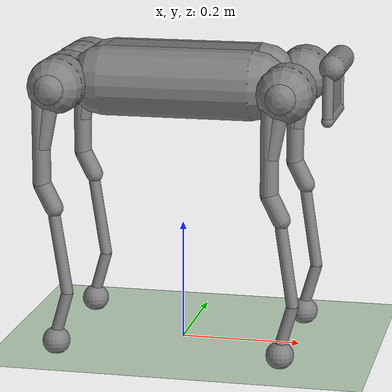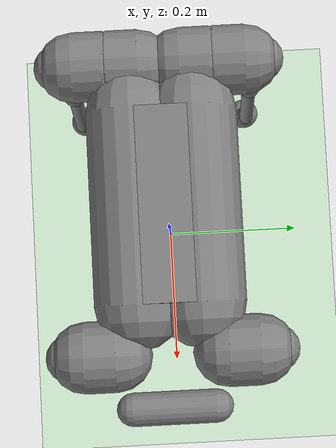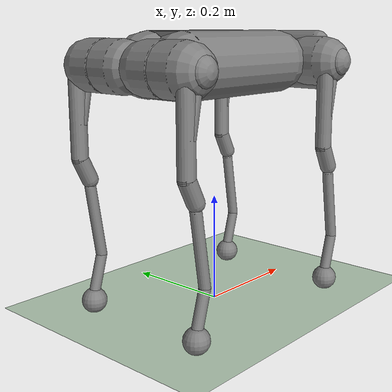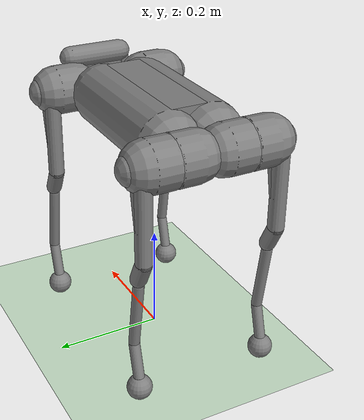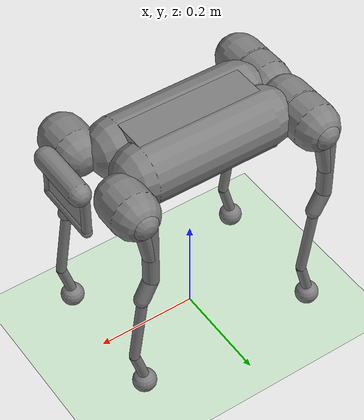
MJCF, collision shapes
<mujoco model="go1">
  <compiler angle="radian" meshdir="assets" autolimits="true"/>
  <compiler angle="radian" autolimits="true"/>

    <custom>
      <numeric data="10" name="constraint_ang_damping"/>
      <numeric data="0.5" name="joint_scale_pos"/>
      <numeric data="0.1" name="joint_scale_ang"/>
      <numeric data="0.9" name="spring_inertia_scale"/>
  </custom>

  <default>
    <default class="go1">
      <geom friction="0.6" margin="0.001" condim="3"/>
      <joint axis="0 1 0" damping="2" armature="0.01" />
      <position kp="100" forcerange="-23.7 23.7"/>
      <default class="abduction">
        <joint axis="1 0 0" damping="1" range="-0.863 0.863"/>
        <position ctrlrange="-0.863 0.863"/>
      </default>
      <default class="hip">
        <joint range="-0.686 4.501"/>
        <position ctrlrange="-0.686 4.501"/>
      </default>
      <default class="knee">
        <joint range="-2.818 -0.888"/>
        <position forcerange="-35.55 35.55" ctrlrange="-2.818 -0.888"/>
      </default>
      <default class="visual">
        <geom type="mesh" contype="0" conaffinity="0" group="2" material="dark"/>
      </default>
      <default class="collision">
        <geom group="3" type="capsule"/>
        <default class="hip_left1">
          <geom size="0.046 0.02" pos="0 0.045 0" quat="1 1 0 0" type="capsule"/>
        </default>
        <default class="hip_left2">
          <geom size="0.031 0.02" pos="0 0.065 0" quat="1 1 0 0" type="capsule"/>
        </default>
        <default class="hip_left3">
          <geom size="0.046 0.02" quat="1 1 0 0" type="capsule"/>
        </default>
        <default class="hip_right1">
          <geom size="0.046 0.02" pos="0 -0.045 0" quat="1 1 0 0" type="capsule"/>
        </default>
        <default class="hip_right2">
          <geom size="0.031 0.02" pos="0 -0.065 0" quat="1 1 0 0" type="capsule"/>
        </default>
        <default class="hip_right3">
          <geom size="0.046 0.02" quat="1 1 0 0" type="capsule"/>
        </default>
        <default class="thigh1">
          <geom size="0.015" fromto="-0.02 0 0 -0.02 0 -0.16"/>
        </default>
        <default class="thigh2">
          <geom size="0.015" fromto="0 0 0 -0.02 0 -0.1"/>
        </default>
        <default class="thigh3">
          <geom size="0.015" fromto="-0.02 0 -0.16 0 0 -0.2"/>
        </default>
        <default class="calf1">
          <geom size="0.01" fromto="0 0 0 0.02 0 -0.13"/>
        </default>
        <default class="calf2">
          <geom size="0.01" fromto="0.02 0 -0.13 0 0 -0.2"/>
        </default>
        <default class="foot">
          <geom type="sphere" size="0.023" pos="0 0 -0.213"  solimp="0.015 1 0.031" condim="3"
            friction="0.8 0.02 0.01"/>
        </default>
      </default>
    </default>
  </default>

  <asset>
    <material name="dark" rgba="0.1 0.1 0.1 1"/>
    <mesh class="go1" file="trunk.stl"/>
    <mesh class="go1" file="hip.stl"/>
    <mesh class="go1" file="thigh_mirror.stl"/>
    <mesh class="go1" file="calf.stl"/>
    <mesh class="go1" file="thigh.stl"/>
    <texture builtin="gradient" height="100" rgb1="1 1 1" rgb2="0 0 0" type="skybox" width="100"/>
    <texture builtin="flat" height="1278" mark="cross" markrgb="1 1 1" name="texgeom" random="0.01" rgb1="0.8 0.6 0.4" rgb2="0.8 0.6 0.4" type="cube" width="127"/>

    <texture builtin="checker" height="100" name="texplane" rgb1="0 0 0" rgb2="0.8 0.8 0.8" type="2d" width="100"/>

    <material name="MatPlane" reflectance="0.5" shininess="1" specular="1" texrepeat="60 60" texture="texplane"/>
    <material name="geom" texture="texgeom" texuniform="true"/>
  </asset>

  <worldbody>

    <light cutoff="100" diffuse="1 1 1" dir="-0 0 -1.3" directional="true" exponent="1" pos="0 0 1.3" specular=".1 .1 .1"/>
    <geom conaffinity="1" condim="3" material="MatPlane" name="floor" pos="0 0 0" rgba="0.8 0.9 0.8 1" size="40 40 40" type="plane"/>
    <body name="trunk" pos="0 0 0.445" childclass="go1">
      <camera name="tracking" mode="trackcom" pos="0 -1 0.8" xyaxes="1 0 0 0 1 1"/>
      <site name="head" pos="0.3 0 0" rgba="1 0 0 1" size="0.02" group="5"/>
      <inertial pos="0.0223 0.002 -0.0005" quat="-0.00342088 0.705204 0.000106698 0.708996" mass="5.204"
        diaginertia="0.0716565 0.0630105 0.0168101"/>
      <freejoint/>
      <geom class="visual" mesh="trunk"/>
      <geom class="collision" size="0.125 0.04 0.057" type="box"/>
      <geom class="collision" quat="1 0 1 0" pos="0 -0.04 0" size="0.058 0.125" type="capsule"/>
      <geom class="collision" quat="1 0 1 0" pos="0 +0.04 0" size="0.058 0.125" type="capsule"/>
      <geom class="collision" pos="0.25 0 0" size="0.005 0.06 0.05" type="box"/>
      <geom class="collision" pos="0.25 0.06 -0.01" size="0.009 0.035"/>
      <geom class="collision" pos="0.25 -0.06 -0.01" size="0.009 0.035"/>
      <geom class="collision" pos="0.25 0 -0.05" size="0.01 0.06" quat="1 1 0 0"/>
      <geom class="collision" pos="0.255 0 0.0355" size="0.021 0.052" quat="1 1 0 0"/>
      <body name="FR_hip" pos="0.1881 -0.04675 0">
        <inertial pos="-0.0049166 0.00762615 -8.865e-05" quat="0.507341 0.514169 0.495027 0.482891" mass="0.68"
          diaginertia="0.000734064 0.000468438 0.000398719"/>
        <joint class="abduction" name="FR_hip_joint"/>
        <geom class="visual" mesh="hip" quat="1 0 0 0"/>
        <geom class="hip_right1"/>
        <geom class="hip_right2"/>
        <body name="FR_thigh" pos="0 -0.08 0">
          <inertial pos="-0.00304722 0.019315 -0.0305004" quat="0.65243 -0.0272313 0.0775126 0.753383" mass="1.009"
            diaginertia="0.00478717 0.00460903 0.000709268"/>
          <joint class="hip" name="FR_thigh_joint"/>
          <geom class="visual" mesh="thigh_mirror"/>
          <geom class="thigh1"/>
          <geom class="thigh2"/>
          <geom class="thigh3"/>
          <body name="FR_calf" pos="0 0 -0.213">
            <inertial pos="0.00429862 0.000976676 -0.146197" quat="0.691246 0.00357467 0.00511118 0.722592"
              mass="0.195862" diaginertia="0.00149767 0.00148468 3.58427e-05"/>
            <joint class="knee" name="FR_calf_joint"/>
            <geom class="visual" mesh="calf"/>
            <geom class="calf1"/>
            <geom class="calf2"/>
            <geom name="FR" class="foot"/>
            <site name="FR" pos="0 0 -0.213" type="sphere" size="0.023" group="5"/>
          </body>
        </body>
      </body>
      <body name="FL_hip" pos="0.1881 0.04675 0">
        <inertial pos="-0.0049166 -0.00762615 -8.865e-05" quat="0.482891 0.495027 0.514169 0.507341" mass="0.68"
          diaginertia="0.000734064 0.000468438 0.000398719"/>
        <joint class="abduction" name="FL_hip_joint"/>
         <geom class="visual" mesh="hip"/>
        <geom class="hip_left1"/>
        <geom class="hip_left2"/>
        <body name="FL_thigh" pos="0 0.08 0">
          <inertial pos="-0.00304722 -0.019315 -0.0305004" quat="0.753383 0.0775126 -0.0272313 0.65243" mass="1.009"
            diaginertia="0.00478717 0.00460903 0.000709268"/>
          <joint class="hip" name="FL_thigh_joint"/>
           <geom class="visual" mesh="thigh"/>
          <geom class="thigh1"/>
          <geom class="thigh2"/>
          <geom class="thigh3"/>
          <body name="FL_calf" pos="0 0 -0.213">
            <inertial pos="0.00429862 0.000976676 -0.146197" quat="0.691246 0.00357467 0.00511118 0.722592"
              mass="0.195862" diaginertia="0.00149767 0.00148468 3.58427e-05"/>
            <joint class="knee" name="FL_calf_joint"/>
             <geom class="visual" mesh="calf"/>
            <geom class="calf1"/>
            <geom class="calf2"/>
            <geom name="FL" class="foot"/>
            <site name="FL" pos="0 0 -0.213" type="sphere" size="0.023" group="5"/>
          </body>
        </body>
      </body>
      <body name="RR_hip" pos="-0.1881 -0.04675 0">
        <inertial pos="0.0049166 0.00762615 -8.865e-05" quat="0.495027 0.482891 0.507341 0.514169" mass="0.68"
          diaginertia="0.000734064 0.000468438 0.000398719"/>
        <joint class="abduction" name="RR_hip_joint"/>
        <geom class="visual" quat="0 0 0 -1" mesh="hip"/>
        <geom class="hip_right1"/>
        <geom class="hip_right2"/>
        <geom class="hip_right3"/>
        <body name="RR_thigh" pos="0 -0.08 0">
          <inertial pos="-0.00304722 0.019315 -0.0305004" quat="0.65243 -0.0272313 0.0775126 0.753383" mass="1.009"
            diaginertia="0.00478717 0.00460903 0.000709268"/>
          <joint class="hip" name="RR_thigh_joint"/>
           <geom class="visual" mesh="thigh_mirror"/>
          <geom class="thigh1"/>
          <geom class="thigh2"/>
          <geom class="thigh3"/>
          <body name="RR_calf" pos="0 0 -0.213">
            <inertial pos="0.00429862 0.000976676 -0.146197" quat="0.691246 0.00357467 0.00511118 0.722592"
              mass="0.195862" diaginertia="0.00149767 0.00148468 3.58427e-05"/>
            <joint class="knee" name="RR_calf_joint"/>
             <geom class="visual" mesh="calf"/>
            <geom class="calf1"/>
            <geom class="calf2"/>
            <geom name="RR" class="foot"/>
            <site name="RR" pos="0 0 -0.213" type="sphere" size="0.023" group="5"/>
          </body>
        </body>
      </body>
      <body name="RL_hip" pos="-0.1881 0.04675 0">
        <inertial pos="0.0049166 -0.00762615 -8.865e-05" quat="0.514169 0.507341 0.482891 0.495027" mass="0.68"
          diaginertia="0.000734064 0.000468438 0.000398719"/>
        <joint class="abduction" name="RL_hip_joint"/>
        <geom class="visual" quat="0 0 1 0" mesh="hip"/>
        <geom class="hip_left1"/>
        <geom class="hip_left2"/>
        <geom class="hip_left3"/>
        <body name="RL_thigh" pos="0 0.08 0">
          <inertial pos="-0.00304722 -0.019315 -0.0305004" quat="0.753383 0.0775126 -0.0272313 0.65243" mass="1.009"
            diaginertia="0.00478717 0.00460903 0.000709268"/>
          <joint class="hip" name="RL_thigh_joint"/>
          <geom class="visual" mesh="thigh"/>
          <geom class="thigh1"/>
          <geom class="thigh2"/>
          <geom class="thigh3"/>
          <body name="RL_calf" pos="0 0 -0.213">
            <inertial pos="0.00429862 0.000976676 -0.146197" quat="0.691246 0.00357467 0.00511118 0.722592"
              mass="0.195862" diaginertia="0.00149767 0.00148468 3.58427e-05"/>
            <joint class="knee" name="RL_calf_joint"/>
            <geom class="visual" mesh="calf"/>
            <geom class="calf1"/>
            <geom class="calf2"/>
            <geom name="RL" class="foot"/>
            <site name="RL" pos="0 0 -0.213" type="sphere" size="0.023" group="5"/>
          </body>
        </body>
      </body>
    </body>
  </worldbody>

  <actuator>
    <position class="abduction" name="FR_hip" joint="FR_hip_joint"/>
    <position class="hip" name="FR_thigh" joint="FR_thigh_joint"/>
    <position class="knee" name="FR_calf" joint="FR_calf_joint"/>
    <position class="abduction" name="FL_hip" joint="FL_hip_joint"/>
    <position class="hip" name="FL_thigh" joint="FL_thigh_joint"/>
    <position class="knee" name="FL_calf" joint="FL_calf_joint"/>
    <position class="abduction" name="RR_hip" joint="RR_hip_joint"/>
    <position class="hip" name="RR_thigh" joint="RR_thigh_joint"/>
    <position class="knee" name="RR_calf" joint="RR_calf_joint"/>
    <position class="abduction" name="RL_hip" joint="RL_hip_joint"/>
    <position class="hip" name="RL_thigh" joint="RL_thigh_joint"/>
    <position class="knee" name="RL_calf" joint="RL_calf_joint"/>
  </actuator>
</mujoco>
